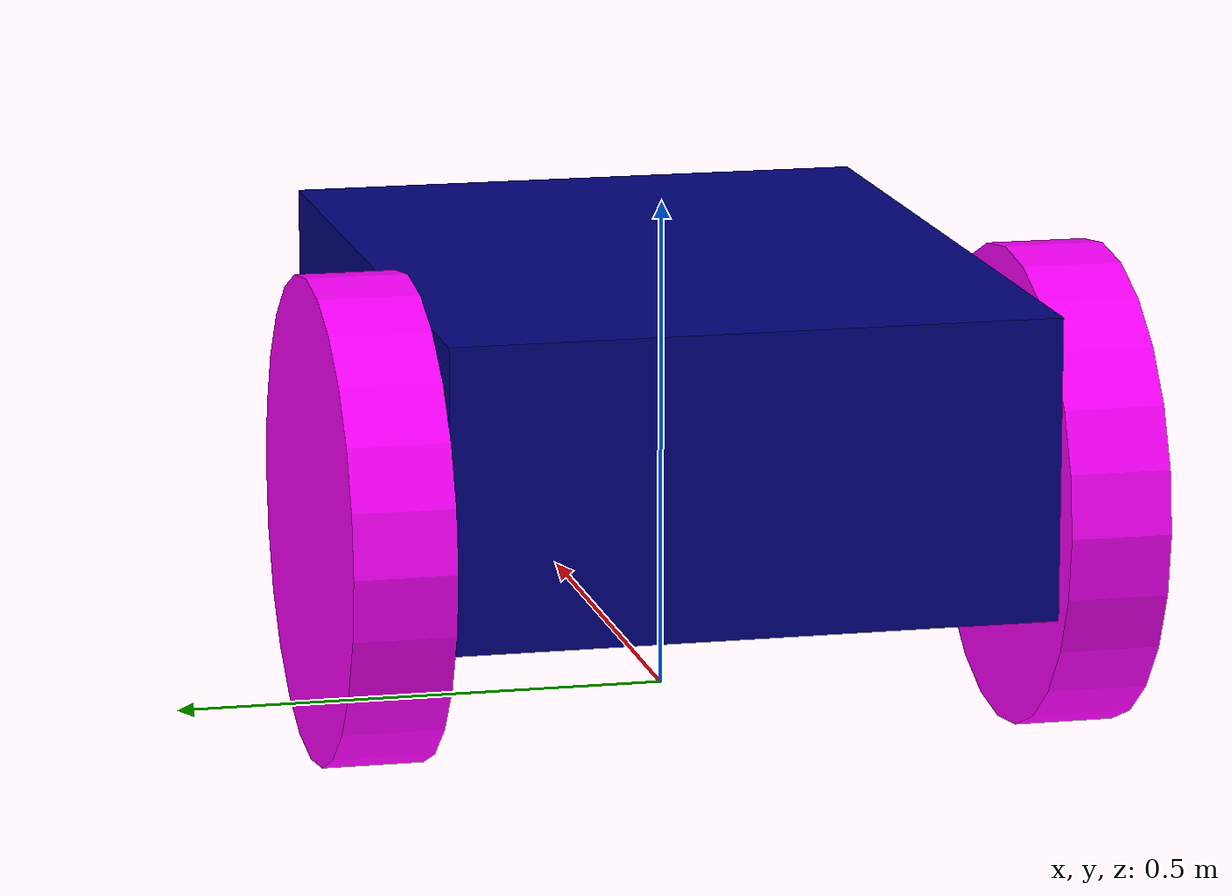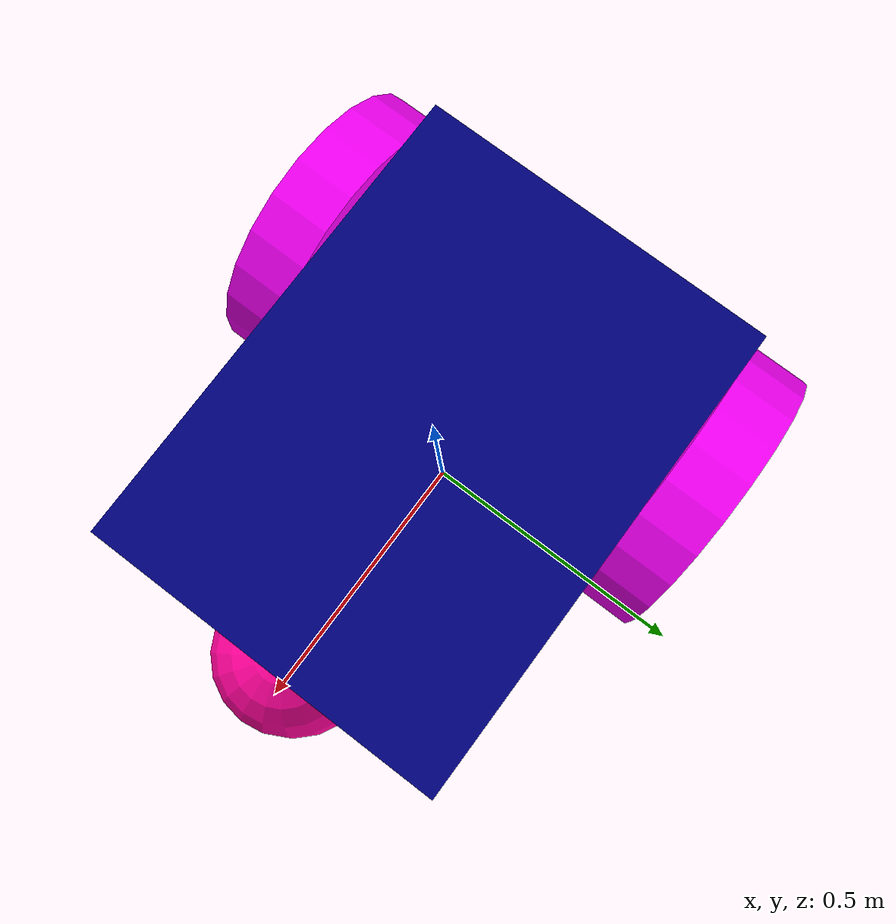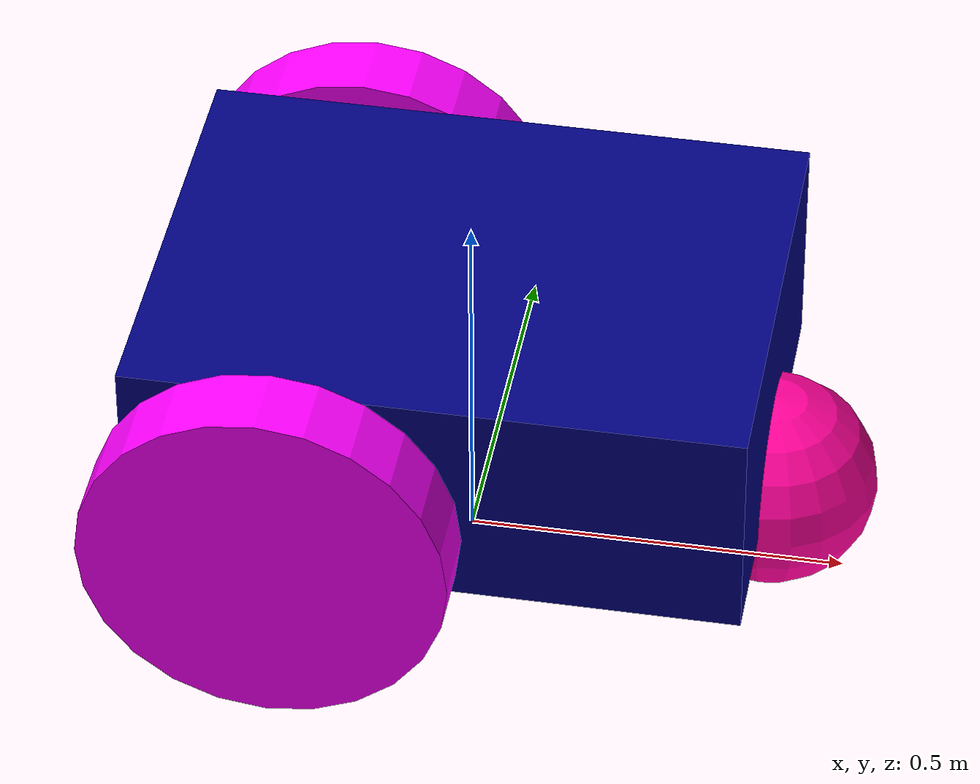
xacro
<?xml version="1.0"?>
<robot name="rover1" xmlns:xacro="http://www.ros.org/wiki/xacro" >
   <xacro:property name="pi" value="3.14"/>
   <xacro:property name="m" value="4"/>
   <xacro:property name="r" value="0.24"/>
   <xacro:property name="h" value="0.1"/>

    <link name="base_link">
        <visual>
            <origin xyz="0.0 0.0 0.3"/>
            <geometry>
                <box size="0.8 0.6 0.3"/>
            </geometry>
            <material name="red">
                <color rgba="0.0 0.0 0.5 1.0"/>
            </material>
        </visual>

        <collision>
            <origin xyz="0.0 0.0 0.3"/>
            <geometry>
                <box size="0.8 0.6 0.3"/>
            </geometry>
        </collision>
            <inertial>
                <origin xyz="0.0 0.0 0.0" rpy="0 0 0"/>
                <mass value="50"/>
                <inertia ixx="0.0" ixy="0.0" ixz="0.0" iyy="0.0" iyz="0.0" izz="0.0" />
            </inertial>

    </link>

    <link name="wheel_dx">

        <inertial>
            <origin xyz="0.0 0.0 0.0" rpy="0.0 ${pi/2} ${pi/2}"/>
            <mass value="${m}"/>
            <inertia  ixx="${m*(3*r*r+h*h)/12}" ixy = "0" ixz = "0" iyy="${m*(3*r*r+h*h)/12}" iyz = "0" izz="${m*r*r/2}"/>
        </inertial>

        <visual>
            <origin xyz="0.0 0.0 0.0" rpy="0.0 ${pi/2} ${pi/2}"/>
            <geometry>
                <cylinder radius="${r}" length="${h}"/>
            </geometry>
            <material name="red">
                <color rgba="1.0 0.0 1.0 1.0"/>
            </material>
        </visual>

        <collision>
            <origin xyz="0.0 0.0 0.0" rpy="0.0 ${pi/2} ${pi/2}"/>
            <geometry>
                <cylinder radius="${r}" length="${h}"/>
            </geometry>
        </collision>

    </link>

    <link name="wheel_sx">

        <inertial>
            <origin xyz="0.0 0.0 0.0" rpy="0.0 ${pi/2} ${pi/2}"/>
            <mass value="${m}"/>
            <inertia  ixx="${m*(3*r*r+h*h)/12}" ixy = "0" ixz = "0" iyy="${m*(3*r*r+h*h)/12}" iyz = "0" izz="${m*r*r/2}"/>
        </inertial>

        <visual >
            <origin xyz="0 0.0 0.0" rpy="0.0 ${pi/2} ${pi/2}"/>
            <geometry>
                <cylinder radius="${r}" length="${h}"/>
            </geometry>
            <material name="red">
                <color rgba="1.0 0.0 1.0 1.0"/>
            </material>
        </visual>

        <collision>
            <origin xyz="0 0.0 0.0" rpy="0.0 ${pi/2} ${pi/2}"/>
            <geometry>
                <cylinder radius="${r}" length="${h}"/>
            </geometry>
        </collision>

    </link>

    <link name="sphere">
        <inertial>
            <origin xyz="0.0 0.0 0.0" rpy="0.0 0.0 0.0"/>
            <mass value="10"/>
            <inertia ixx="0.3" ixy="0.0" ixz="0.0" iyy="0.3" iyz="0.0" izz="0.2"/>
        </inertial>
        <visual >
            <origin xyz="0.0 0 0.0" rpy="0.0 0 0.0"/>
            <geometry>

                    <sphere radius="0.14"/>

            </geometry>
            <material name="red">
                <color rgba="1.0 0.0 0.6 1.0"/>
            </material>
        </visual>
        <collision>
            <origin xyz="0.0 0 0.0" rpy="0.0 0 0.0"/>
            <geometry>
                    <sphere radius="0.14"/>
            </geometry>
        </collision>
    </link>

    <gazebo reference="wheel_dx">
  <mu1 value="1.0"/>
  <mu2 value="1.0"/>
  <kp  value="10000000.0" />
  <kd  value="1.0" />
  <fdir1 value="1 0 0"/>
  <material>Gazebo/Black</material>
</gazebo>

<gazebo reference="wheel_sx">
  <mu1 value="1.0"/>
  <mu2 value="1.0"/>
  <kp  value="10000000.0" />
  <kd  value="1.0" />
  <fdir1 value="1 0 0"/>
  <material>Gazebo/Black</material>
</gazebo>

    <gazebo reference="sphere">
  <mu1>0.0</mu1>
  <mu2>0.0</mu2>
  <material>Gazebo/Red</material>
</gazebo>

    <joint name="joint_sphere" type="fixed">
        <parent link="base_link"/>
        <child link="sphere"/>
        <origin xyz="0.4 0.0 0.14" rpy="0.0 0.0 0.0"/>
    </joint>

    <joint name="motor_dx" type="continuous">
        <origin xyz="-0.2 0.35 0.24" rpy="0.0 0.0 0.0"/>
        <parent link="base_link"/>
        <child link="wheel_dx"/>
        <axis xyz="0 -1 0.0" rpy="0.0 0.0 0.0"/>
        <limit effort="100.0" velocity="100.0"/>
        <joint_properties damping="0.0" friction="0.0"/>
    </joint>

    <joint name="motor_sx" type="continuous">
        <origin xyz="-0.2 -0.35 0.24" rpy="0.0 0.0 0.0"/>
        <parent link="base_link"/>
        <child link="wheel_sx"/>
        <axis xyz="0.0 -1 0.0" rpy="0.0 0.0 0.0"/>
        <limit effort="100.0" velocity="100.0"/>
        <joint_properties damping="0.0" friction="0.0"/>
    </joint>

    <transmission name="motordx">
  <type>transmission_interface/SimpleTransmission</type>
  <joint name="motor_dx">
  <hardwareInterface>hardware_interface/EffortJointInterface</hardwareInterface>
  </joint>
  <actuator name="motor-dx">
    <hardwareInterface>hardware_interface/EffortJointInterface</hardwareInterface>
    <mechanicalReduction>10</mechanicalReduction>
  </actuator>
</transmission>

<transmission name="motorsx">
  <type>transmission_interface/SimpleTransmission</type>
  <joint name="motor_sx">
  <hardwareInterface>hardware_interface/EffortJointInterface</hardwareInterface>
  </joint>
  <actuator name="motor-sx">
    <hardwareInterface>hardware_interface/EffortJointInterface</hardwareInterface>
    <mechanicalReduction>10</mechanicalReduction>
  </actuator>
</transmission>

<gazebo>
  <plugin name="gazebo_ros_control" filename="libgazebo_ros_control.so">
    <robotNamespace>/myrover</robotNamespace>
    <legacyModeNS>true</legacyModeNS>
  </plugin>
</gazebo>

</robot>
